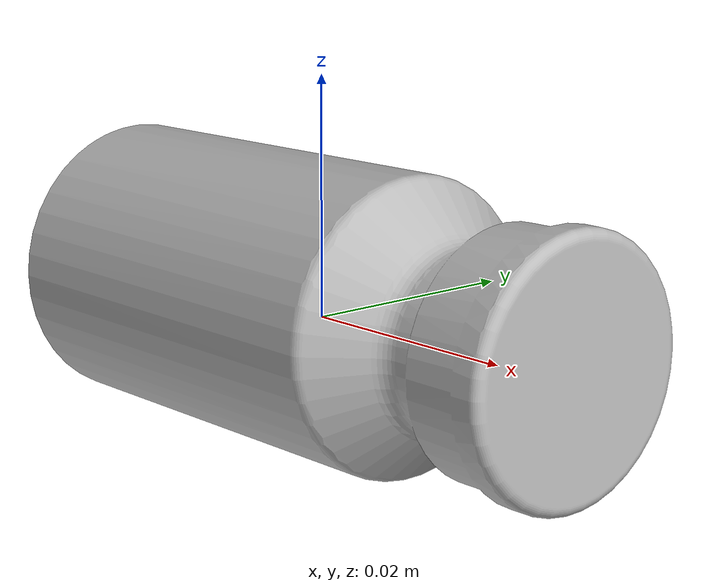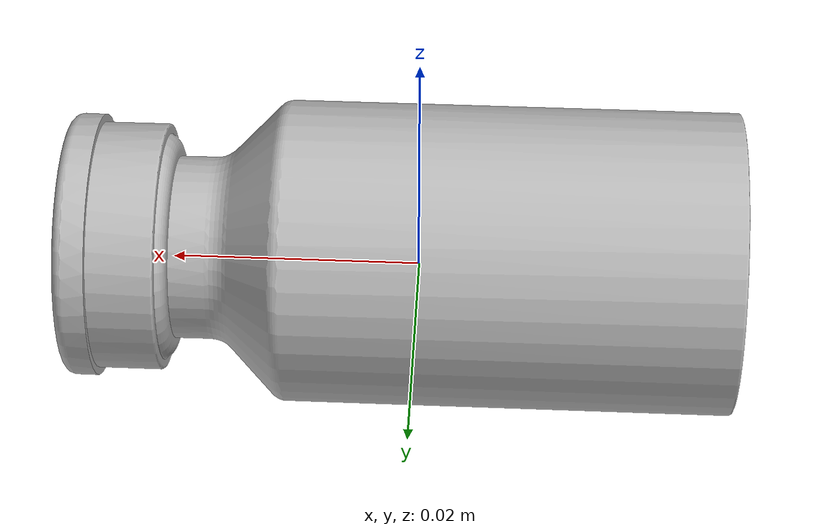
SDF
<?xml version='1.0' ?>
<sdf version="1.6">
    <model name="vaccine">
        <static>false</static>
        <link name="link">
            <collision name="collision">
                <pose>0 0 0.001 0 0 -1.5708</pose>
                <geometry>
                    <mesh>
                        <uri>meshes/o_ibuprofen.obj</uri>
                    </mesh>
                </geometry>
            </collision>
            <visual name="visual">
                <pose>0 0 0.001 0 0 -1.5708</pose>
                <geometry>
                    <mesh>
                        <uri>meshes/o_ibuprofen.obj</uri>
                    </mesh>
                </geometry>
            </visual>
        </link>
    </model>
</sdf>
